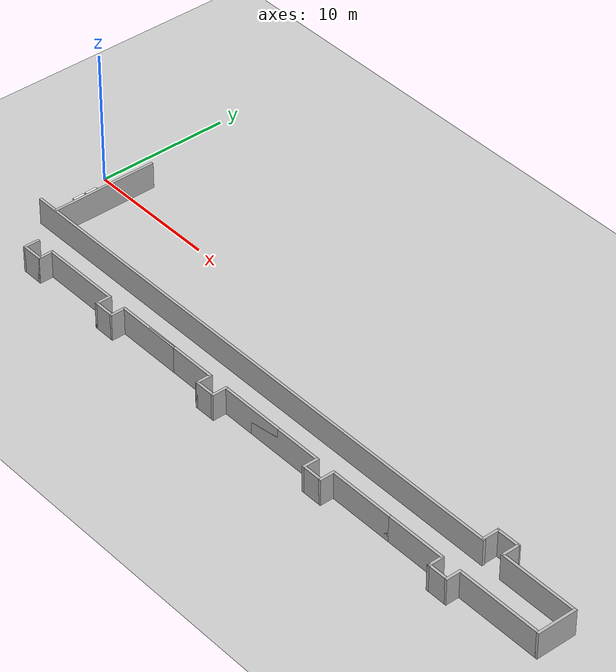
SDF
<sdf version="1.10">
 <world name="corridor">
  <model name="ground_plane">
   <static>1</static>
   <link name="link">
    <collision name="collision">
     <geometry>
      <plane><normal>0.000000 0.000000 1.000000</normal><size>100.000000 100.000000</size></plane>
     </geometry>
     <surface><friction><ode><mu>100.000000</mu><mu2>50.000000</mu2></ode></friction></surface>
    </collision>
    <visual name="visual">
     <cast_shadows>0</cast_shadows>
     <geometry>
      <plane><normal>0.000000 0.000000 1.000000</normal><size>100.000000 100.000000</size></plane>
     </geometry>
     <material>
      <script><uri>file://media/materials/scripts/gazebo.material</uri><name>Gazebo/Grey</name></script>
     </material>
    </visual>
    <velocity_decay><linear>0.000000</linear><angular>0.000000</angular></velocity_decay>
   </link>
  </model>
  <model name="wall_02_model">
   <pose>4.5 -9.3 1.0 0.0 0.0 0.0</pose>
   <static>1</static>
   <link name="wall_02_body">
    <inertial>
     <mass>1.000000</mass>
     <inertia>
      <ixx>1.000000</ixx>
      <ixy>0.000000</ixy>
      <ixz>0.000000</ixz>
      <iyy>1.000000</iyy>
      <iyz>0.000000</iyz>
      <izz>1.000000</izz>
     </inertia>
    </inertial>
    <collision name="collision">
     <geometry><box><size>0.200000 1.200000 2.000000</size></box></geometry>
    </collision>
    <visual name="visual"><geometry><box><size>0.200000 1.200000 2.000000</size></box></geometry></visual>
    <velocity_decay><linear>0.000000</linear><angular>0.000000</angular></velocity_decay>
   </link>
  </model>
  <model name="wall_03_model">
   <pose>5.3 -9.8 1.0 0.0 0.0 0.0</pose>
   <static>1</static>
   <link name="wall_03_body">
    <inertial>
     <mass>1.000000</mass>
     <inertia>
      <ixx>1.000000</ixx>
      <ixy>0.000000</ixy>
      <ixz>0.000000</ixz>
      <iyy>1.000000</iyy>
      <iyz>0.000000</iyz>
      <izz>1.000000</izz>
     </inertia>
    </inertial>
    <collision name="collision"><geometry><box><size>1.500000 0.20000 2.000000</size></box></geometry></collision>
    <visual name="visual"><geometry><box><size>1.500000 0.20000 2.000000</size></box></geometry></visual>
    <velocity_decay><linear>0.000000</linear><angular>0.000000</angular></velocity_decay>
   </link>
  </model>
  <model name="wall_04_model">
   <pose>6.0 -9.3 1.0 0.0 0.0 0.0</pose>
   <static>1</static>
   <link name="wall_04_body">
    <inertial>
     <mass>1.000000</mass>
     <inertia>
      <ixx>1.000000</ixx>
      <ixy>0.000000</ixy>
      <ixz>0.000000</ixz>
      <iyy>1.000000</iyy>
      <iyz>0.000000</iyz>
      <izz>1.000000</izz>
     </inertia>
    </inertial>
    <collision name="collision">
     <geometry><box><size>0.200000 1.200000 2.000000</size></box></geometry>
    </collision>
    <visual name="visual"><geometry><box><size>0.200000 1.200000 2.000000</size></box></geometry></visual>
    <velocity_decay><linear>0.000000</linear><angular>0.000000</angular></velocity_decay>
   </link>
  </model>
  <model name="wall_05_model">
   <pose>9.0 -8.8 1.0 0.0 0.0 0.0</pose>
   <static>1</static>
   <link name="wall_05_body">
    <inertial>
     <mass>1.000000</mass>
     <inertia>
      <ixx>1.000000</ixx>
      <ixy>0.000000</ixy>
      <ixz>0.000000</ixz>
      <iyy>1.000000</iyy>
      <iyz>0.000000</iyz>
      <izz>1.000000</izz>
     </inertia>
    </inertial>
    <collision name="collision">
     <geometry><box><size>6.000000 0.200000 2.000000</size></box></geometry>
    </collision>
    <visual name="visual"><geometry><box><size>6.000000 0.200000 2.000000</size></box></geometry></visual>
    <velocity_decay><linear>0.000000</linear><angular>0.000000</angular></velocity_decay>
   </link>
  </model>
  <model name="wall_06_model">
   <pose>12.0 -9.3 1.0 0.0 0.0 0.0</pose>
   <static>1</static>
   <link name="wall_06_body">
    <inertial>
     <mass>1.000000</mass>
     <inertia>
      <ixx>1.000000</ixx>
      <ixy>0.000000</ixy>
      <ixz>0.000000</ixz>
      <iyy>1.000000</iyy>
      <iyz>0.000000</iyz>
      <izz>1.000000</izz>
     </inertia>
    </inertial>
    <collision name="collision">
     <geometry><box><size>0.200000 1.200000 2.000000</size></box></geometry>
    </collision>
    <visual name="visual"><geometry><box><size>0.200000 1.200000 2.000000</size></box></geometry></visual>
    <velocity_decay><linear>0.000000</linear><angular>0.000000</angular></velocity_decay>
   </link>
  </model>
  <model name="wall_07_model">
   <pose>12.7 -9.8 1.0 0.0 0.0 0.0</pose>
   <static>1</static>
   <link name="wall_07_body">
    <inertial>
     <mass>1.000000</mass>
     <inertia>
      <ixx>1.000000</ixx>
      <ixy>0.000000</ixy>
      <ixz>0.000000</ixz>
      <iyy>1.000000</iyy>
      <iyz>0.000000</iyz>
      <izz>1.000000</izz>
     </inertia>
    </inertial>
    <collision name="collision"><geometry><box><size>1.500000 0.20000 2.000000</size></box></geometry></collision>
    <visual name="visual"><geometry><box><size>1.500000 0.20000 2.000000</size></box></geometry></visual>
    <velocity_decay><linear>0.000000</linear><angular>0.000000</angular></velocity_decay>
   </link>
  </model>
  <model name="wall_08_model">
   <pose>13.5 -9.3 1.0 0.0 0.0 0.0</pose>
   <static>1</static>
   <link name="wall_08_body">
    <inertial>
     <mass>1.000000</mass>
     <inertia>
      <ixx>1.000000</ixx>
      <ixy>0.000000</ixy>
      <ixz>0.000000</ixz>
      <iyy>1.000000</iyy>
      <iyz>0.000000</iyz>
      <izz>1.000000</izz>
     </inertia>
    </inertial>
    <collision name="collision">
     <geometry><box><size>0.200000 1.200000 2.000000</size></box></geometry>
    </collision>
    <visual name="visual"><geometry><box><size>0.200000 1.200000 2.000000</size></box></geometry></visual>
    <velocity_decay><linear>0.000000</linear><angular>0.000000</angular></velocity_decay>
   </link>
  </model>
  <model name="wall_09_model">
   <pose>16.0 -8.8 1.0 0.0 0.0 0.0</pose>
   <static>1</static>
   <link name="wall_09_body">
    <inertial>
     <mass>1.000000</mass>
     <inertia>
      <ixx>1.000000</ixx>
      <ixy>0.000000</ixy>
      <ixz>0.000000</ixz>
      <iyy>1.000000</iyy>
      <iyz>0.000000</iyz>
      <izz>1.000000</izz>
     </inertia>
    </inertial>
    <collision name="collision">
     <geometry><box><size>5.000000 0.200000 2.000000</size></box></geometry>
    </collision>
    <visual name="visual"><geometry><box><size>5.000000 0.200000 2.000000</size></box></geometry></visual>
    <velocity_decay><linear>0.000000</linear><angular>0.000000</angular></velocity_decay>
   </link>
  </model>
  <model name="wall_10_model">
   <pose>19.0 -8.8 1.0 0.0 0.0 0.0</pose>
   <static>1</static>
   <link name="wall_10_body">
    <inertial>
     <mass>1.000000</mass>
     <inertia>
      <ixx>1.000000</ixx>
      <ixy>0.000000</ixy>
      <ixz>0.000000</ixz>
      <iyy>1.000000</iyy>
      <iyz>0.000000</iyz>
      <izz>1.000000</izz>
     </inertia>
    </inertial>
    <collision name="collision">
     <geometry><box><size>6.000000 0.200000 2.000000</size></box></geometry>
    </collision>
    <visual name="visual"><geometry><box><size>6.000000 0.200000 2.000000</size></box></geometry></visual>
    <velocity_decay><linear>0.000000</linear><angular>0.000000</angular></velocity_decay>
   </link>
  </model>
  <model name="wall_11_model">
   <pose>22.0 -9.3 1.0 0.0 0.0 0.0</pose>
   <static>1</static>
   <link name="wall_11_body">
    <inertial>
     <mass>1.000000</mass>
     <inertia>
      <ixx>1.000000</ixx>
      <ixy>0.000000</ixy>
      <ixz>0.000000</ixz>
      <iyy>1.000000</iyy>
      <iyz>0.000000</iyz>
      <izz>1.000000</izz>
     </inertia>
    </inertial>
    <collision name="collision">
     <geometry><box><size>0.200000 1.200000 2.000000</size></box></geometry>
    </collision>
    <visual name="visual"><geometry><box><size>0.200000 1.200000 2.000000</size></box></geometry></visual>
    <velocity_decay><linear>0.000000</linear><angular>0.000000</angular></velocity_decay>
   </link>
  </model>
  <model name="wall_12_model">
   <pose>22.7 -9.8 1.0 0.0 0.0 0.0</pose>
   <static>1</static>
   <link name="wall_12_body">
    <inertial>
     <mass>1.000000</mass>
     <inertia>
      <ixx>1.000000</ixx>
      <ixy>0.000000</ixy>
      <ixz>0.000000</ixz>
      <iyy>1.000000</iyy>
      <iyz>0.000000</iyz>
      <izz>1.000000</izz>
     </inertia>
    </inertial>
    <collision name="collision"><geometry><box><size>1.500000 0.20000 2.000000</size></box></geometry></collision>
    <visual name="visual"><geometry><box><size>1.500000 0.20000 2.000000</size></box></geometry></visual>
    <velocity_decay><linear>0.000000</linear><angular>0.000000</angular></velocity_decay>
   </link>
  </model>
  <model name="wall_13_model">
   <pose>23.5 -9.3 1.0 0.0 0.0 0.0</pose>
   <static>1</static>
   <link name="wall_13_body">
    <inertial>
     <mass>1.000000</mass>
     <inertia>
      <ixx>1.000000</ixx>
      <ixy>0.000000</ixy>
      <ixz>0.000000</ixz>
      <iyy>1.000000</iyy>
      <iyz>0.000000</iyz>
      <izz>1.000000</izz>
     </inertia>
    </inertial>
    <collision name="collision">
     <geometry><box><size>0.200000 1.200000 2.000000</size></box></geometry>
    </collision>
    <visual name="visual"><geometry><box><size>0.200000 1.200000 2.000000</size></box></geometry></visual>
    <velocity_decay><linear>0.000000</linear><angular>0.000000</angular></velocity_decay>
   </link>
  </model>
  <model name="wall_14_model">
   <pose>26.0 -8.8 1.0 0.0 0.0 0.0</pose>
   <static>1</static>
   <link name="wall_14_body">
    <inertial>
     <mass>1.000000</mass>
     <inertia>
      <ixx>1.000000</ixx>
      <ixy>0.000000</ixy>
      <ixz>0.000000</ixz>
      <iyy>1.000000</iyy>
      <iyz>0.000000</iyz>
      <izz>1.000000</izz>
     </inertia>
    </inertial>
    <collision name="collision">
     <geometry><box><size>5.000000 0.200000 2.000000</size></box></geometry>
    </collision>
    <visual name="visual"><geometry><box><size>5.000000 0.200000 2.000000</size></box></geometry></visual>
    <velocity_decay><linear>0.000000</linear><angular>0.000000</angular></velocity_decay>
   </link>
  </model>
  <model name="wall_15_model">
   <pose>29.0 -8.8 1.0 0.0 0.0 0.0</pose>
   <static>1</static>
   <link name="wall_15_body">
    <inertial>
     <mass>1.000000</mass>
     <inertia>
      <ixx>1.000000</ixx>
      <ixy>0.000000</ixy>
      <ixz>0.000000</ixz>
      <iyy>1.000000</iyy>
      <iyz>0.000000</iyz>
      <izz>1.000000</izz>
     </inertia>
    </inertial>
    <collision name="collision">
     <geometry><box><size>6.000000 0.200000 2.000000</size></box></geometry>
    </collision>
    <visual name="visual"><geometry><box><size>6.000000 0.200000 2.000000</size></box></geometry></visual>
    <velocity_decay><linear>0.000000</linear><angular>0.000000</angular></velocity_decay>
   </link>
  </model>
  <model name="wall_16_model">
   <pose>32.0 -9.3 1.0 0.0 0.0 0.0</pose>
   <static>1</static>
   <link name="wall_16_body">
    <inertial>
     <mass>1.000000</mass>
     <inertia>
      <ixx>1.000000</ixx>
      <ixy>0.000000</ixy>
      <ixz>0.000000</ixz>
      <iyy>1.000000</iyy>
      <iyz>0.000000</iyz>
      <izz>1.000000</izz>
     </inertia>
    </inertial>
    <collision name="collision">
     <geometry><box><size>0.200000 1.200000 2.000000</size></box></geometry>
    </collision>
    <visual name="visual"><geometry><box><size>0.200000 1.200000 2.000000</size></box></geometry></visual>
    <velocity_decay><linear>0.000000</linear><angular>0.000000</angular></velocity_decay>
   </link>
  </model>
  <model name="wall_17_model">
   <pose>32.7 -9.8 1.0 0.0 0.0 0.0</pose>
   <static>1</static>
   <link name="wall_17_body">
    <inertial>
     <mass>1.000000</mass>
     <inertia>
      <ixx>1.000000</ixx>
      <ixy>0.000000</ixy>
      <ixz>0.000000</ixz>
      <iyy>1.000000</iyy>
      <iyz>0.000000</iyz>
      <izz>1.000000</izz>
     </inertia>
    </inertial>
    <collision name="collision"><geometry><box><size>1.500000 0.20000 2.000000</size></box></geometry></collision>
    <visual name="visual"><geometry><box><size>1.500000 0.20000 2.000000</size></box></geometry></visual>
    <velocity_decay><linear>0.000000</linear><angular>0.000000</angular></velocity_decay>
   </link>
  </model>
  <model name="wall_19_model">
   <pose>33.5 -9.3 1.0 0.0 0.0 0.0</pose>
   <static>1</static>
   <link name="wall_19_body">
    <inertial>
     <mass>1.000000</mass>
     <inertia>
      <ixx>1.000000</ixx>
      <ixy>0.000000</ixy>
      <ixz>0.000000</ixz>
      <iyy>1.000000</iyy>
      <iyz>0.000000</iyz>
      <izz>1.000000</izz>
     </inertia>
    </inertial>
    <collision name="collision">
     <geometry><box><size>0.200000 1.200000 2.000000</size></box></geometry>
    </collision>
    <visual name="visual"><geometry><box><size>0.200000 1.200000 2.000000</size></box></geometry></visual>
    <velocity_decay><linear>0.000000</linear><angular>0.000000</angular></velocity_decay>
   </link>
  </model>
  <model name="wall_20_model">
   <pose>36.0 -8.8 1.0 0.0 0.0 0.0</pose>
   <static>1</static>
   <link name="wall_20_body">
    <inertial>
     <mass>1.000000</mass>
     <inertia>
      <ixx>1.000000</ixx>
      <ixy>0.000000</ixy>
      <ixz>0.000000</ixz>
      <iyy>1.000000</iyy>
      <iyz>0.000000</iyz>
      <izz>1.000000</izz>
     </inertia>
    </inertial>
    <collision name="collision">
     <geometry><box><size>5.000000 0.200000 2.000000</size></box></geometry>
    </collision>
    <visual name="visual"><geometry><box><size>5.000000 0.200000 2.000000</size></box></geometry></visual>
    <velocity_decay><linear>0.000000</linear><angular>0.000000</angular></velocity_decay>
   </link>
  </model>
  <model name="wall_21_model">
   <pose>40.0 -8.8 1.0 0.0 0.0 0.0</pose>
   <static>1</static>
   <link name="wall_21_body">
    <inertial>
     <mass>1.000000</mass>
     <inertia>
      <ixx>1.000000</ixx>
      <ixy>0.000000</ixy>
      <ixz>0.000000</ixz>
      <iyy>1.000000</iyy>
      <iyz>0.000000</iyz>
      <izz>1.000000</izz>
     </inertia>
    </inertial>
    <collision name="collision">
     <geometry><box><size>6.000000 0.200000 2.000000</size></box></geometry>
    </collision>
    <visual name="visual"><geometry><box><size>6.000000 0.200000 2.000000</size></box></geometry></visual>
    <velocity_decay><linear>0.000000</linear><angular>0.000000</angular></velocity_decay>
   </link>
  </model>
  <model name="wall_22_model">
   <pose>43.0 -9.3 1.0 0.0 0.0 0.0</pose>
   <static>1</static>
   <link name="wall_22_body">
    <inertial>
     <mass>1.000000</mass>
     <inertia>
      <ixx>1.000000</ixx>
      <ixy>0.000000</ixy>
      <ixz>0.000000</ixz>
      <iyy>1.000000</iyy>
      <iyz>0.000000</iyz>
      <izz>1.000000</izz>
     </inertia>
    </inertial>
    <collision name="collision">
     <geometry><box><size>0.200000 1.200000 2.000000</size></box></geometry>
    </collision>
    <visual name="visual"><geometry><box><size>0.200000 1.200000 2.000000</size></box></geometry></visual>
    <velocity_decay><linear>0.000000</linear><angular>0.000000</angular></velocity_decay>
   </link>
  </model>
  <model name="wall_23_model">
   <pose>43.7 -9.8 1.0 0.0 0.0 0.0</pose>
   <static>1</static>
   <link name="wall_23_body">
    <inertial>
     <mass>1.000000</mass>
     <inertia>
      <ixx>1.000000</ixx>
      <ixy>0.000000</ixy>
      <ixz>0.000000</ixz>
      <iyy>1.000000</iyy>
      <iyz>0.000000</iyz>
      <izz>1.000000</izz>
     </inertia>
    </inertial>
    <collision name="collision"><geometry><box><size>1.500000 0.20000 2.000000</size></box></geometry></collision>
    <visual name="visual"><geometry><box><size>1.500000 0.20000 2.000000</size></box></geometry></visual>
    <velocity_decay><linear>0.000000</linear><angular>0.000000</angular></velocity_decay>
   </link>
  </model>
  <model name="wall_24_model">
   <pose>44.5 -9.3 1.0 0.0 0.0 0.0</pose>
   <static>1</static>
   <link name="wall_24_body">
    <inertial>
     <mass>1.000000</mass>
     <inertia>
      <ixx>1.000000</ixx>
      <ixy>0.000000</ixy>
      <ixz>0.000000</ixz>
      <iyy>1.000000</iyy>
      <iyz>0.000000</iyz>
      <izz>1.000000</izz>
     </inertia>
    </inertial>
    <collision name="collision">
     <geometry><box><size>0.200000 1.200000 2.000000</size></box></geometry>
    </collision>
    <visual name="visual"><geometry><box><size>0.200000 1.200000 2.000000</size></box></geometry></visual>
    <velocity_decay><linear>0.000000</linear><angular>0.000000</angular></velocity_decay>
   </link>
  </model>
  <model name="wall_25_model">
   <pose>47.7 -8.8 1.0 0.0 0.0 0.0</pose>
   <static>1</static>
   <link name="wall_25_body">
    <inertial>
     <mass>1.000000</mass>
     <inertia>
      <ixx>1.000000</ixx>
      <ixy>0.000000</ixy>
      <ixz>0.000000</ixz>
      <iyy>1.000000</iyy>
      <iyz>0.000000</iyz>
      <izz>1.000000</izz>
     </inertia>
    </inertial>
    <collision name="collision">
     <geometry><box><size>6.500000 0.200000 2.000000</size></box></geometry>
    </collision>
    <visual name="visual"><geometry><box><size>6.500000 0.200000 2.000000</size></box></geometry></visual>
    <velocity_decay><linear>0.000000</linear><angular>0.000000</angular></velocity_decay>
   </link>
  </model>
  <model name="wall_26_model">
   <pose>51 -7.4 1.0 0.0 0.0 0.0</pose>
   <static>1</static>
   <link name="wall_26_body">
    <inertial>
     <mass>1.000000</mass>
     <inertia>
      <ixx>1.000000</ixx>
      <ixy>0.000000</ixy>
      <ixz>0.000000</ixz>
      <iyy>1.000000</iyy>
      <iyz>0.000000</iyz>
      <izz>1.000000</izz>
     </inertia>
    </inertial>
    <collision name="collision">
     <geometry><box><size>0.200000 3.000000 2.000000</size></box></geometry>
    </collision>
    <visual name="visual"><geometry><box><size>0.200000 3.000000 2.000000</size></box></geometry></visual>
    <velocity_decay><linear>0.000000</linear><angular>0.000000</angular></velocity_decay>
   </link>
  </model>
  <model name="wall_28_model">
   <pose>48.0 -6 1.0 0.0 0.0 0.0</pose>
   <static>1</static>
   <link name="wall_28_body">
    <inertial>
     <mass>1.000000</mass>
     <inertia>
      <ixx>1.000000</ixx>
      <ixy>0.000000</ixy>
      <ixz>0.000000</ixz>
      <iyy>1.000000</iyy>
      <iyz>0.000000</iyz>
      <izz>1.000000</izz>
     </inertia>
    </inertial>
    <collision name="collision">
     <geometry><box><size>6.000000 0.200000 2.000000</size></box></geometry>
    </collision>
    <visual name="visual"><geometry><box><size>6.000000 0.200000 2.000000</size></box></geometry></visual>
    <velocity_decay><linear>0.000000</linear><angular>0.000000</angular></velocity_decay>
   </link>
  </model>
  <model name="wall_29_model">
   <pose>43.4 -5.4 1.0 0.0 0.0 0.0</pose>
   <static>1</static>
   <link name="wall_29_body">
    <inertial>
     <mass>1.000000</mass>
     <inertia>
      <ixx>1.000000</ixx>
      <ixy>0.000000</ixy>
      <ixz>0.000000</ixz>
      <iyy>1.000000</iyy>
      <iyz>0.000000</iyz>
      <izz>1.000000</izz>
     </inertia>
    </inertial>
    <collision name="collision">
     <geometry><box><size>0.200000 1.200000 2.000000</size></box></geometry>
    </collision>
    <visual name="visual"><geometry><box><size>0.200000 1.200000 2.000000</size></box></geometry></visual>
    <velocity_decay><linear>0.000000</linear><angular>0.000000</angular></velocity_decay>
   </link>
  </model>
  <model name="wall_30_model">
   <pose>45.1 -5.4 1.0 0.0 0.0 0.0</pose>
   <static>1</static>
   <link name="wall_30_body">
    <inertial>
     <mass>1.000000</mass>
     <inertia>
      <ixx>1.000000</ixx>
      <ixy>0.000000</ixy>
      <ixz>0.000000</ixz>
      <iyy>1.000000</iyy>
      <iyz>0.000000</iyz>
      <izz>1.000000</izz>
     </inertia>
    </inertial>
    <collision name="collision">
     <geometry><box><size>0.200000 1.200000 2.000000</size></box></geometry>
    </collision>
    <visual name="visual"><geometry><box><size>0.200000 1.200000 2.000000</size></box></geometry></visual>
    <velocity_decay><linear>0.000000</linear><angular>0.000000</angular></velocity_decay>
   </link>
  </model>
  <model name="wall_31_model">
   <pose>44.25 -4.8 1.0 0.0 0.0 0.0</pose>
   <static>1</static>
   <link name="wall_31_body">
    <inertial>
     <mass>1.000000</mass>
     <inertia>
      <ixx>1.000000</ixx>
      <ixy>0.000000</ixy>
      <ixz>0.000000</ixz>
      <iyy>1.000000</iyy>
      <iyz>0.000000</iyz>
      <izz>1.000000</izz>
     </inertia>
    </inertial>
    <collision name="collision"><geometry><box><size>1.90000 0.20000 2.000000</size></box></geometry></collision>
    <visual name="visual"><geometry><box><size>1.900 0.20000 2.000000</size></box></geometry></visual>
    <velocity_decay><linear>0.000000</linear><angular>0.000000</angular></velocity_decay>
   </link>
  </model>
  <model name="wall_34_model">
   <pose>2.7 -2 1.0 0.0 0.0 0.0</pose>
   <static>1</static>
   <link name="wall_34_body">
    <inertial>
     <mass>1.000000</mass>
     <inertia>
      <ixx>1.000000</ixx>
      <ixy>0.000000</ixy>
      <ixz>0.000000</ixz>
      <iyy>1.000000</iyy>
      <iyz>0.000000</iyz>
      <izz>1.000000</izz>
     </inertia>
    </inertial>
    <collision name="collision">
     <geometry><box><size>0.200000 8.000000 2.000000</size></box></geometry>
    </collision>
    <visual name="visual"><geometry><box><size>0.200000 8.000000 2.000000</size></box></geometry></visual>
    <velocity_decay><linear>0.000000</linear><angular>0.000000</angular></velocity_decay>
   </link>
  </model>
  <model name="wall_36_model">
   <pose>22.3 -6.0 1.0 0.0 0.0 0.0</pose>
   <static>1</static>
   <link name="wall_36_body">
    <inertial>
     <mass>1.000000</mass>
     <inertia>
      <ixx>1.000000</ixx>
      <ixy>0.000000</ixy>
      <ixz>0.000000</ixz>
      <iyy>1.000000</iyy>
      <iyz>0.000000</iyz>
      <izz>1.000000</izz>
     </inertia>
    </inertial>
    <collision name="collision">
     <geometry><box><size>42.500000 0.200000 2.000000</size></box></geometry>
    </collision>
    <visual name="visual"><geometry><box><size>42.500000 0.200000 2.000000</size></box></geometry></visual>
    <velocity_decay><linear>0.000000</linear><angular>0.000000</angular></velocity_decay>
   </link>
  </model>
  <model name="poster_3_model">
   <pose>2.5 0 1.0 0.0 0.0 0.0</pose>
   <static>1</static>
   <link name="poster_3_body">
    <inertial>
     <mass>1.000000</mass>
     <inertia>
      <ixx>1.000000</ixx>
      <ixy>0.000000</ixy>
      <ixz>0.000000</ixz>
      <iyy>1.000000</iyy>
      <iyz>0.000000</iyz>
      <izz>1.000000</izz>
     </inertia>
    </inertial>
    <collision name="collision"><geometry><box><size>0.01000 1.5000 1.500000</size></box></geometry></collision>
    <visual name="visual">
     <geometry><box><size>0.01000 1.50000 1.500000</size></box></geometry>
     <material>
      <script>
       <uri>/home/marat/exchange_project_ws/src/collab_industrial_research/gz_world_package/models/materials/scripts/lirs.material</uri>
       <name>lirs/LIRS_wall</name>
      </script>
     </material>
    </visual>
    <velocity_decay><linear>0.000000</linear><angular>0.000000</angular></velocity_decay>
   </link>
  </model>
  <model name="bookshelf_1">
   <static>0</static>
   <link name="link">
    <inertial><mass>1.000000</mass></inertial>
    <collision name="back">
     <pose>0.000000 0.005000 0.900000 0.000000 0.000000 0.000000</pose>
     <geometry><box><size>0.900000 0.010000 1.800000</size></box></geometry>
    </collision>
    <visual name="visual1">
     <pose>0.000000 0.005000 0.900000 0.000000 0.000000 0.000000</pose>
     <geometry><box><size>0.900000 0.010000 1.900000</size></box></geometry>
     <material>
      <script>
       <uri>/home/marat/exchange_project_ws/src/collab_industrial_research/gz_world_package/models/materials/scripts/lirs.material</uri>
       <name>lirs/White_table</name>
      </script>
     </material>
    </visual>
    <collision name="left_side">
     <pose>0.450000 -0.195000 0.900000 0.000000 0.000000 0.000000</pose>
     <geometry><box><size>0.020000 0.400000 1.800000</size></box></geometry>
    </collision>
    <visual name="visual2">
     <pose>0.450000 -0.195000 0.900000 0.000000 0.000000 0.000000</pose>
     <geometry><box><size>0.020000 0.400000 1.800000</size></box></geometry>
     <material>
      <script>
       <uri>/home/marat/exchange_project_ws/src/collab_industrial_research/gz_world_package/models/materials/scripts/lirs.material</uri>
       <name>lirs/White_table</name>
      </script>
     </material>
    </visual>
    <collision name="right_side">
     <pose>-0.450000 -0.195000 0.900000 0.000000 0.000000 0.000000</pose>
     <geometry><box><size>0.020000 0.400000 1.800000</size></box></geometry>
    </collision>
    <visual name="visual3">
     <pose>-0.450000 -0.195000 0.900000 0.000000 0.000000 0.000000</pose>
     <geometry><box><size>0.020000 0.400000 1.800000</size></box></geometry>
     <material>
      <script>
       <uri>/home/marat/exchange_project_ws/src/collab_industrial_research/gz_world_package/models/materials/scripts/lirs.material</uri>
       <name>lirs/White_table</name>
      </script>
     </material>
    </visual>
    <collision name="bottom">
     <pose>0.000000 -0.195000 0.40000 0.000000 0.000000 0.000000</pose>
     <geometry><box><size>0.880000 0.400000 0.8000</size></box></geometry>
    </collision>
    <visual name="visual4">
     <pose>0.000000 -0.195000 0.40000 0.000000 0.000000 0.000000</pose>
     <geometry><box><size>0.880000 0.400000 0.80000</size></box></geometry>
     <material>
      <script>
       <uri>/home/marat/exchange_project_ws/src/collab_industrial_research/gz_world_package/models/materials/scripts/lirs.material</uri>
       <name>lirs/White_table</name>
      </script>
     </material>
    </visual>
    <collision name="top">
     <pose>0.000000 -0.195000 1.80000 0.000000 0.000000 0.000000</pose>
     <geometry><box><size>0.880000 0.400000 0.020000</size></box></geometry>
    </collision>
    <visual name="visual5">
     <pose>0.000000 -0.195000 1.80000 0.000000 0.000000 0.000000</pose>
     <geometry><box><size>0.880000 0.400000 0.020000</size></box></geometry>
     <material>
      <script>
       <uri>/home/marat/exchange_project_ws/src/collab_industrial_research/gz_world_package/models/materials/scripts/lirs.material</uri>
       <name>lirs/White_table</name>
      </script>
     </material>
    </visual>
    <collision name="high_shelf">
     <pose>0.000000 -0.195000 1.200000 0.000000 0.000000 0.000000</pose>
     <geometry><box><size>0.880000 0.400000 0.020000</size></box></geometry>
    </collision>
    <visual name="visual7">
     <pose>0.000000 -0.195000 1.20000 0.000000 0.000000 0.000000</pose>
     <geometry><box><size>0.880000 0.400000 0.020000</size></box></geometry>
     <material>
      <script>
       <uri>/home/marat/exchange_project_ws/src/collab_industrial_research/gz_world_package/models/materials/scripts/lirs.material</uri>
       <name>lirs/White_table</name>
      </script>
     </material>
    </visual>
    <collision name="high_shelf_2">
     <pose>0.000000 -0.195000 1.500000 0.000000 0.000000 0.000000</pose>
     <geometry><box><size>0.880000 0.400000 0.020000</size></box></geometry>
    </collision>
    <visual name="visual8">
     <pose>0.000000 -0.195000 1.500000 0.000000 0.000000 0.000000</pose>
     <geometry><box><size>0.880000 0.400000 0.020000</size></box></geometry>
     <material>
      <script>
       <uri>/home/marat/exchange_project_ws/src/collab_industrial_research/gz_world_package/models/materials/scripts/lirs.material</uri>
       <name>lirs/White_table</name>
      </script>
     </material>
    </visual>
    <velocity_decay><linear>0.000000</linear><angular>0.000000</angular></velocity_decay>
   </link>
   <pose>2.6 -2.8 0.0 0.0 0.0 -1.57</pose>
  </model>
  <model name="wardrobe">
   <static>0</static>
   <link name="link">
    <inertial><mass>1.000000</mass></inertial>
    <collision name="back">
     <pose>0.000000 0.005000 0.900000 0.000000 0.000000 0.000000</pose>
     <geometry><box><size>0.900000 0.010000 1.800000</size></box></geometry>
    </collision>
    <collision name="bottom">
     <pose>0.000000 -0.195000 0.90000 0.000000 0.000000 0.000000</pose>
     <geometry><box><size>0.880000 0.400000 1.8000</size></box></geometry>
    </collision>
    <visual name="visual4">
     <pose>0.000000 -0.195000 0.90000 0.000000 0.000000 0.000000</pose>
     <geometry><box><size>0.880000 0.400000 1.80000</size></box></geometry>
     <material>
      <script>
       <uri>/home/marat/exchange_project_ws/src/collab_industrial_research/gz_world_package/models/materials/scripts/lirs.material</uri>
       <name>lirs/White_table</name>
      </script>
     </material>
    </visual>
    <velocity_decay><linear>0.000000</linear><angular>0.000000</angular></velocity_decay>
   </link>
   <pose>2.6 -3.8 0.0 0.0 0.0 -1.57</pose>
  </model>
  <model name="cabinet_3">
   <static>0</static>
   <link name="cabinet_bottom_plate">
    <inertial>
     <pose>0.000000 0.000000 -1.000000 0.000000 0.000000 0.000000</pose>
     <inertia>
      <ixx>2.050000</ixx>
      <ixy>0.000000</ixy>
      <ixz>0.000000</ixz>
      <iyy>2.050000</iyy>
      <iyz>0.000000</iyz>
      <izz>2.050000</izz>
     </inertia>
     <mass>25.000000</mass>
    </inertial>
    <collision name="cabinet_bottom_plate_geom">
     <pose>0.000000 0.000000 0.010000 0.000000 0.000000 0.000000</pose>
     <geometry><box><size>0.4500 0.490000 .6000</size></box></geometry>
    </collision>
    <visual name="cabinet_bottom_plate_geom_visual">
     <pose>0.000000 0.000000 0.010000 0.000000 0.000000 0.000000</pose>
     <geometry><box><size>0.4500 0.490000 .6000</size></box></geometry>
     <material>
      <script>
       <uri>/home/marat/exchange_project_ws/src/collab_industrial_research/gz_world_package/models/materials/scripts/lirs.material</uri>
       <name>lirs/White_table</name>
      </script>
     </material>
    </visual>
    <velocity_decay><linear>0.000000</linear><angular>0.000000</angular></velocity_decay>
   </link>
   <pose>2.260000 -4.650000 0.300000 0.000000 0.000000 0.000000</pose>
  </model>
 </world>
</sdf>
